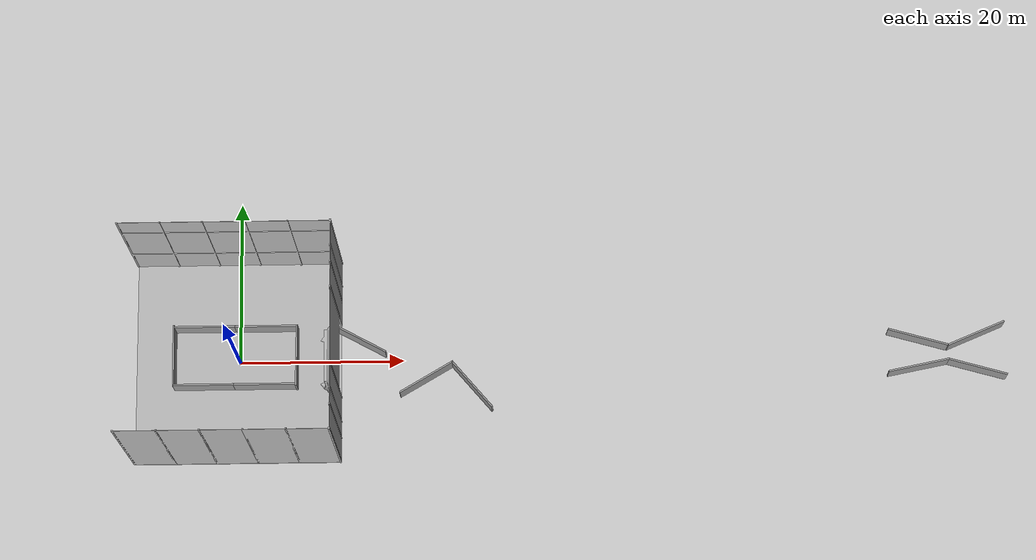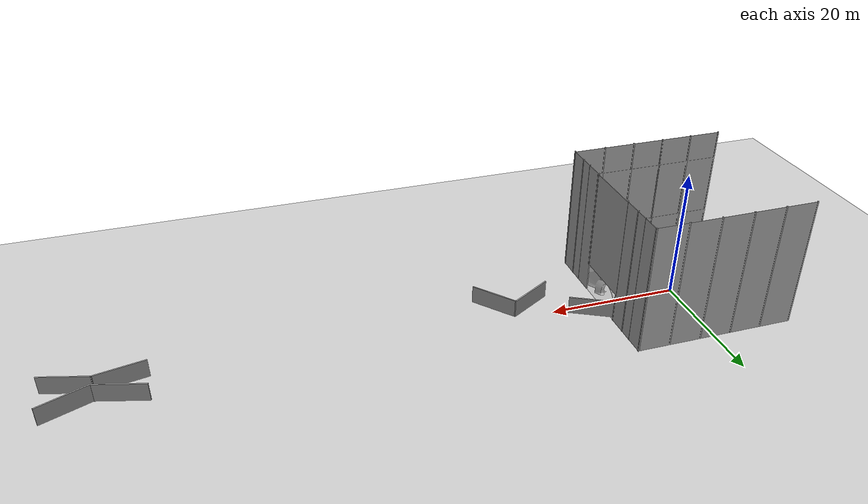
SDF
<sdf version="1.6">
 <world name="default">
  <model name="ground_plane">
   <static>1</static>
   <link name="link">
    <collision name="collision">
     <geometry><plane><normal>0 0 1</normal><size>100 100</size></plane></geometry>
     <surface>
      <contact><collide_bitmask>65535</collide_bitmask></contact>
      <friction><ode><mu>100</mu><mu2>50</mu2></ode></friction>
     </surface>
    </collision>
    <visual name="visual">
     <cast_shadows>0</cast_shadows>
     <geometry><plane><normal>0 0 1</normal><size>100 100</size></plane></geometry>
     <material>
      <script><uri>file://media/materials/scripts/gazebo.material</uri><name>Gazebo/Grey</name></script>
     </material>
    </visual>
   </link>
  </model>
  <light name="sun" type="directional">
   <pose>0 0 10 0 -0 0</pose>
   <diffuse>0.8 0.8 0.8 1</diffuse>
   <specular>0.2 0.2 0.2 1</specular>
   <attenuation>
    <range>1000</range>
    <constant>0.9</constant>
    <linear>0.01</linear>
    <quadratic>0.001</quadratic>
   </attenuation>
   <direction>-0.5 0.1 -0.9</direction>
  </light>
  <plugin name="ros_interface_plugin" filename="librotors_gazebo_ros_interface_plugin.so"/>
  <spherical_coordinates>
   <surface_model>EARTH_WGS84</surface_model>
   <latitude_deg>47.3667</latitude_deg>
   <longitude_deg>8.55</longitude_deg>
   <elevation>500</elevation>
   <heading_deg>0</heading_deg>
  </spherical_coordinates>
  <physics name="default_physics" default="0" type="ode">
   <ode>
    <solver>
     <type>quick</type>
     <iters>1000</iters>
     <sor>1.3</sor>
     <use_dynamic_moi_rescaling>0</use_dynamic_moi_rescaling>
    </solver>
    <constraints>
     <cfm>0</cfm>
     <erp>0.2</erp>
     <contact_max_correcting_vel>100</contact_max_correcting_vel>
     <contact_surface_layer>0.001</contact_surface_layer>
    </constraints>
   </ode>
   <max_step_size>0.01</max_step_size>
   <real_time_factor>1</real_time_factor>
   <real_time_update_rate>100</real_time_update_rate>
  </physics>
  <model name="staging_area">
   <static>1</static>
   <link name="link">
    <collision name="collision1">
     <pose>-10 -10 20 0 -0 0</pose>
     <geometry><box><size>0.1 0.1 0.1</size></box></geometry>
    </collision>
    <collision name="collision2">
     <pose>10 10 20 0 -0 0</pose>
     <geometry><box><size>0.1 0.1 0.1</size></box></geometry>
    </collision>
    <visual name="plane_visual">
     <pose>-1.18172 0 0 0 -0 0</pose>
     <geometry><mesh><uri>model://subt_tunnel_staging_area/meshes/Asphalt_Plane.DAE</uri></mesh></geometry>
    </visual>
    <visual name="fence_right1">
     <pose>8.81828 -12.4 0 1.5707 -0 0</pose>
     <geometry>
      <mesh><uri>model://subt_tunnel_staging_area/meshes/Fence.dae</uri><scale>1 6.7 1</scale></mesh>
     </geometry>
    </visual>
    <visual name="fence_right2">
     <pose>3.81828 -12.4 0 1.5707 -0 0</pose>
     <geometry>
      <mesh><uri>model://subt_tunnel_staging_area/meshes/Fence.dae</uri><scale>1 6.7 1</scale></mesh>
     </geometry>
    </visual>
    <visual name="fence_right3">
     <pose>-1.18172 -12.4 0 1.5707 -0 0</pose>
     <geometry>
      <mesh><uri>model://subt_tunnel_staging_area/meshes/Fence.dae</uri><scale>1 6.7 1</scale></mesh>
     </geometry>
    </visual>
    <visual name="fence_right4">
     <pose>-6.18172 -12.4 0 1.5707 -0 0</pose>
     <geometry>
      <mesh><uri>model://subt_tunnel_staging_area/meshes/Fence.dae</uri><scale>1 6.7 1</scale></mesh>
     </geometry>
    </visual>
    <visual name="fence_right5">
     <pose>-11.1817 -12.4 0 1.5707 -0 0</pose>
     <geometry>
      <mesh><uri>model://subt_tunnel_staging_area/meshes/Fence.dae</uri><scale>1 6.7 1</scale></mesh>
     </geometry>
    </visual>
    <visual name="fence_left1">
     <pose>8.81828 12.4 0 1.5707 -0 3.1415</pose>
     <geometry>
      <mesh><uri>model://subt_tunnel_staging_area/meshes/Fence.dae</uri><scale>1 6.7 1</scale></mesh>
     </geometry>
    </visual>
    <visual name="fence_left2">
     <pose>3.81828 12.4 0 1.5707 -0 3.1415</pose>
     <geometry>
      <mesh><uri>model://subt_tunnel_staging_area/meshes/Fence.dae</uri><scale>1 6.7 1</scale></mesh>
     </geometry>
    </visual>
    <visual name="fence_left3">
     <pose>-1.18172 12.4 0 1.5707 -0 3.1415</pose>
     <geometry>
      <mesh><uri>model://subt_tunnel_staging_area/meshes/Fence.dae</uri><scale>1 6.7 1</scale></mesh>
     </geometry>
    </visual>
    <visual name="fence_left4">
     <pose>-6.18172 12.4 0 1.5707 -0 3.1415</pose>
     <geometry>
      <mesh><uri>model://subt_tunnel_staging_area/meshes/Fence.dae</uri><scale>1 6.7 1</scale></mesh>
     </geometry>
    </visual>
    <visual name="fence_left5">
     <pose>-11.1817 12.4 0 1.5707 -0 3.1415</pose>
     <geometry>
      <mesh><uri>model://subt_tunnel_staging_area/meshes/Fence.dae</uri><scale>1 6.7 1</scale></mesh>
     </geometry>
    </visual>
    <visual name="fence_front_left1">
     <pose>11.3182 10 0 1.5707 0 1.5707</pose>
     <geometry>
      <mesh><uri>model://subt_tunnel_staging_area/meshes/Fence.dae</uri><scale>1 6.7 1</scale></mesh>
     </geometry>
    </visual>
    <visual name="fence_front_left2">
     <pose>11.3182 7 0 1.5707 0 1.5707</pose>
     <geometry>
      <mesh><uri>model://subt_tunnel_staging_area/meshes/Fence.dae</uri><scale>1 6.7 1</scale></mesh>
     </geometry>
    </visual>
    <visual name="fence_front_right1">
     <pose>11.3182 -10 0 1.5707 0 1.5707</pose>
     <geometry>
      <mesh><uri>model://subt_tunnel_staging_area/meshes/Fence.dae</uri><scale>1 6.7 1</scale></mesh>
     </geometry>
    </visual>
    <visual name="fence_front_right2">
     <pose>11.3182 -7 0 1.5707 0 1.5707</pose>
     <geometry>
      <mesh><uri>model://subt_tunnel_staging_area/meshes/Fence.dae</uri><scale>1 6.7 1</scale></mesh>
     </geometry>
    </visual>
    <visual name="fence_front_top">
     <pose>11.3182 0 4.5 1.5707 0 1.5707</pose>
     <geometry>
      <mesh><uri>model://subt_tunnel_staging_area/meshes/Fence.dae</uri><scale>1.8 5.17 1</scale></mesh>
     </geometry>
    </visual>
    <collision name="ceiling_collision">
     <pose>-1.18172 0 20.5 0 -0 0</pose>
     <geometry><box><size>25 25 1</size></box></geometry>
    </collision>
    <collision name="right_collision">
     <pose>-1.18172 -13 10.5 0 -0 0</pose>
     <geometry><box><size>25 1 21</size></box></geometry>
    </collision>
    <collision name="left_collision">
     <pose>-1.18172 13 10.5 0 -0 0</pose>
     <geometry><box><size>25 1 21</size></box></geometry>
    </collision>
    <collision name="rear_collision">
     <pose>-13.6182 0 10.5 0 -0 0</pose>
     <geometry><box><size>1 25 21</size></box></geometry>
    </collision>
    <collision name="front_left_collision">
     <pose>11.3182 8.75 10.5 0 -0 0</pose>
     <geometry><box><size>1 9.5 21</size></box></geometry>
    </collision>
    <collision name="front_right_collision">
     <pose>11.3182 -8.75 10.5 0 -0 0</pose>
     <geometry><box><size>1 9.5 21</size></box></geometry>
    </collision>
    <collision name="front_top_collision">
     <pose>11.3182 0 12.5 0 -0 0</pose>
     <geometry><box><size>1 8 15</size></box></geometry>
    </collision>
    <collision name="plane_collision">
     <pose>-1.18172 0 -0.502 0 -0 0</pose>
     <geometry><box><size>25 25 1</size></box></geometry>
    </collision>
    <collision name="collision">
     <pose>10 0 -0.001 0 0 -1.5708</pose>
     <geometry>
      <mesh><scale>0.93 0.93 0.93</scale><uri>model://subt_tunnel_staging_area/meshes/Entrance.dae</uri></mesh>
     </geometry>
    </collision>
    <visual name="visual">
     <pose>10 0 -0.001 0 0 -1.5708</pose>
     <geometry>
      <mesh><scale>0.93 0.93 0.93</scale><uri>model://subt_tunnel_staging_area/meshes/Entrance.dae</uri></mesh>
     </geometry>
    </visual>
   </link>
   <pose>1 0 0 0 -0 0</pose>
  </model>
  <model name="grey wall 1">
   <static>1</static>
   <link name="link">
    <pose>0 0 1.4 0 -0 0</pose>
    <collision name="collision"><geometry><box><size>7.5 0.2 2.8</size></box></geometry></collision>
    <visual name="visual">
     <cast_shadows>0</cast_shadows>
     <geometry><box><size>7.5 0.2 2.8</size></box></geometry>
     <material>
      <script>
       <uri>model://grey_wall/materials/scripts</uri>
       <uri>model://grey_wall/materials/textures</uri>
       <name>vrc/grey_wall</name>
      </script>
     </material>
    </visual>
   </link>
   <pose>14.525 2.367 1e-06 -0.023674 0.009173 -0.495405</pose>
  </model>
  <model name="grey wall 4">
   <static>1</static>
   <link name="link">
    <pose>0 0 1.4 0 -0 0</pose>
    <collision name="collision"><geometry><box><size>7.5 0.2 2.8</size></box></geometry></collision>
    <visual name="visual">
     <cast_shadows>0</cast_shadows>
     <geometry><box><size>7.5 0.2 2.8</size></box></geometry>
     <material>
      <script>
       <uri>model://grey_wall/materials/scripts</uri>
       <uri>model://grey_wall/materials/textures</uri>
       <name>vrc/grey_wall</name>
      </script>
     </material>
    </visual>
   </link>
   <pose>22.7906 -2.57175 0 0 -0 0.528</pose>
  </model>
  <model name="grey wall 5">
   <static>1</static>
   <link name="link">
    <pose>0 0 1.4 0 -0 0</pose>
    <collision name="collision"><geometry><box><size>7.5 0.2 2.8</size></box></geometry></collision>
    <visual name="visual">
     <cast_shadows>0</cast_shadows>
     <geometry><box><size>7.5 0.2 2.8</size></box></geometry>
     <material>
      <script>
       <uri>model://grey_wall/materials/scripts</uri>
       <uri>model://grey_wall/materials/textures</uri>
       <name>vrc/grey_wall</name>
      </script>
     </material>
    </visual>
   </link>
   <pose>28.3102 -3.53544 0 0 0 -0.865</pose>
  </model>
  <model name="grey wall 7">
   <static>1</static>
   <link name="link">
    <pose>0 0 1.4 0 -0 0</pose>
    <collision name="collision"><geometry><box><size>7.5 0.2 2.8</size></box></geometry></collision>
    <visual name="visual">
     <cast_shadows>0</cast_shadows>
     <geometry><box><size>7.5 0.2 2.8</size></box></geometry>
     <material>
      <script>
       <uri>model://grey_wall/materials/scripts</uri>
       <uri>model://grey_wall/materials/textures</uri>
       <name>vrc/grey_wall</name>
      </script>
     </material>
    </visual>
   </link>
   <pose>82.63 -1.9 0 0 -0 0.195</pose>
  </model>
  <model name="grey wall 8">
   <static>1</static>
   <link name="link">
    <pose>0 0 1.4 0 -0 0</pose>
    <collision name="collision"><geometry><box><size>7.5 0.2 2.8</size></box></geometry></collision>
    <visual name="visual">
     <cast_shadows>0</cast_shadows>
     <geometry><box><size>7.5 0.2 2.8</size></box></geometry>
     <material>
      <script>
       <uri>model://grey_wall/materials/scripts</uri>
       <uri>model://grey_wall/materials/textures</uri>
       <name>vrc/grey_wall</name>
      </script>
     </material>
    </visual>
   </link>
   <pose>82.63 1.61 -0 0 0 -0.275</pose>
  </model>
  <model name="grey wall 9">
   <static>1</static>
   <link name="link">
    <pose>0 0 1.4 0 -0 0</pose>
    <collision name="collision"><geometry><box><size>7.5 0.2 2.8</size></box></geometry></collision>
    <visual name="visual">
     <cast_shadows>0</cast_shadows>
     <geometry><box><size>7.5 0.2 2.8</size></box></geometry>
     <material>
      <script>
       <uri>model://grey_wall/materials/scripts</uri>
       <uri>model://grey_wall/materials/textures</uri>
       <name>vrc/grey_wall</name>
      </script>
     </material>
    </visual>
   </link>
   <pose>89.72 -2.16 -0 0 0 -0.275</pose>
  </model>
  <model name="grey wall 10">
   <static>1</static>
   <link name="link">
    <pose>0 0 1.4 0 -0 0</pose>
    <collision name="collision"><geometry><box><size>7.5 0.2 2.8</size></box></geometry></collision>
    <visual name="visual">
     <cast_shadows>0</cast_shadows>
     <geometry><box><size>7.5 0.2 2.8</size></box></geometry>
     <material>
      <script>
       <uri>model://grey_wall/materials/scripts</uri>
       <uri>model://grey_wall/materials/textures</uri>
       <name>vrc/grey_wall</name>
      </script>
     </material>
    </visual>
   </link>
   <pose>89.72 2 -0 0 -0 0.394</pose>
  </model>
  <gravity>0 0 -9.8</gravity>
  <magnetic_field>6e-06 2.3e-05 -4.2e-05</magnetic_field>
  <atmosphere type="adiabatic"/>
  <scene><ambient>0.4 0.4 0.4 1</ambient><background>0.7 0.7 0.7 1</background><shadows>1</shadows></scene>
  <audio><device>default</device></audio>
  <model name="grey_wall">
   <static>1</static>
   <link name="link">
    <pose>0 0 1.4 0 -0 0</pose>
    <collision name="collision"><geometry><box><size>7.5 0.2 2.8</size></box></geometry></collision>
    <visual name="visual">
     <cast_shadows>0</cast_shadows>
     <geometry><box><size>7.5 0.2 2.8</size></box></geometry>
     <material>
      <script>
       <uri>model://grey_wall/materials/scripts</uri>
       <uri>model://grey_wall/materials/textures</uri>
       <name>vrc/grey_wall</name>
      </script>
     </material>
    </visual>
   </link>
   <pose>3.20106 3.99925 0 0 -0 0</pose>
  </model>
  <model name="grey_wall_0">
   <static>1</static>
   <link name="link">
    <pose>0 0 1.4 0 -0 0</pose>
    <collision name="collision"><geometry><box><size>7.5 0.2 2.8</size></box></geometry></collision>
    <visual name="visual">
     <cast_shadows>0</cast_shadows>
     <geometry><box><size>7.5 0.2 2.8</size></box></geometry>
     <material>
      <script>
       <uri>model://grey_wall/materials/scripts</uri>
       <uri>model://grey_wall/materials/textures</uri>
       <name>vrc/grey_wall</name>
      </script>
     </material>
    </visual>
   </link>
   <pose>-4.10314 4.00899 0 0 -0 0</pose>
  </model>
  <model name="grey_wall_1">
   <static>1</static>
   <link name="link">
    <pose>0 0 1.4 0 -0 0</pose>
    <collision name="collision"><geometry><box><size>7.5 0.2 2.8</size></box></geometry></collision>
    <visual name="visual">
     <cast_shadows>0</cast_shadows>
     <geometry><box><size>7.5 0.2 2.8</size></box></geometry>
     <material>
      <script>
       <uri>model://grey_wall/materials/scripts</uri>
       <uri>model://grey_wall/materials/textures</uri>
       <name>vrc/grey_wall</name>
      </script>
     </material>
    </visual>
   </link>
   <pose>-7.9465 0.47456 0 0 -0 1.57374</pose>
  </model>
  <model name="grey_wall_2">
   <static>1</static>
   <link name="link">
    <pose>0 0 1.4 0 -0 0</pose>
    <collision name="collision"><geometry><box><size>7.5 0.2 2.8</size></box></geometry></collision>
    <visual name="visual">
     <cast_shadows>0</cast_shadows>
     <geometry><box><size>7.5 0.2 2.8</size></box></geometry>
     <material>
      <script>
       <uri>model://grey_wall/materials/scripts</uri>
       <uri>model://grey_wall/materials/textures</uri>
       <name>vrc/grey_wall</name>
      </script>
     </material>
    </visual>
   </link>
   <pose>-4.25374 -3.20657 0 0 -0 0</pose>
  </model>
  <model name="grey_wall_3">
   <static>1</static>
   <link name="link">
    <pose>0 0 1.4 0 -0 0</pose>
    <collision name="collision"><geometry><box><size>7.5 0.2 2.8</size></box></geometry></collision>
    <visual name="visual">
     <cast_shadows>0</cast_shadows>
     <geometry><box><size>7.5 0.2 2.8</size></box></geometry>
     <material>
      <script>
       <uri>model://grey_wall/materials/scripts</uri>
       <uri>model://grey_wall/materials/textures</uri>
       <name>vrc/grey_wall</name>
      </script>
     </material>
    </visual>
   </link>
   <pose>3.10422 -3.20845 0 0 -0 0</pose>
  </model>
  <model name="grey_wall_4">
   <static>1</static>
   <link name="link">
    <pose>0 0 1.4 0 -0 0</pose>
    <collision name="collision"><geometry><box><size>7.5 0.2 2.8</size></box></geometry></collision>
    <visual name="visual">
     <cast_shadows>0</cast_shadows>
     <geometry><box><size>7.5 0.2 2.8</size></box></geometry>
     <material>
      <script>
       <uri>model://grey_wall/materials/scripts</uri>
       <uri>model://grey_wall/materials/textures</uri>
       <name>vrc/grey_wall</name>
      </script>
     </material>
    </visual>
   </link>
   <pose>6.99058 0.341306 0 0 0 -1.58204</pose>
  </model>
 </world>
</sdf>
